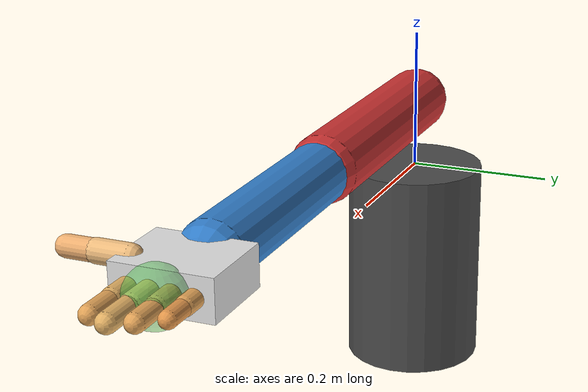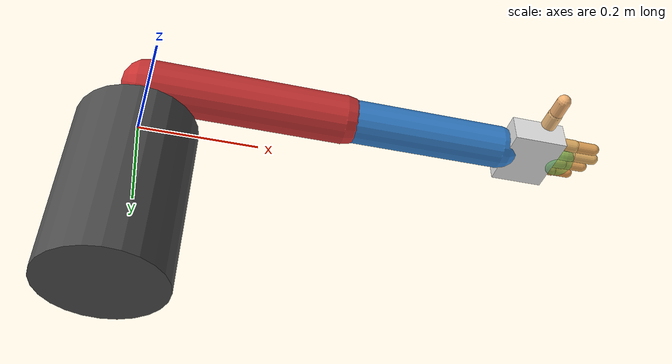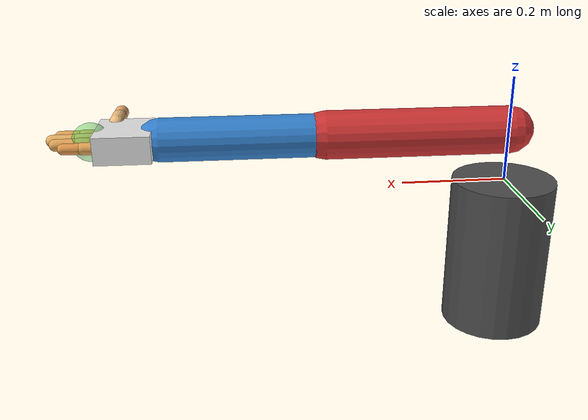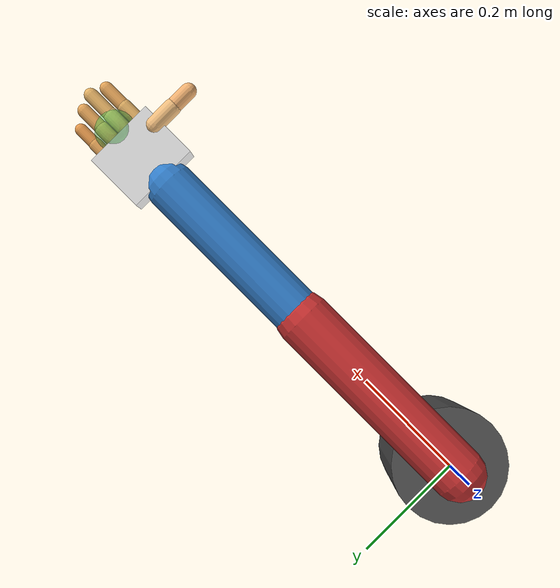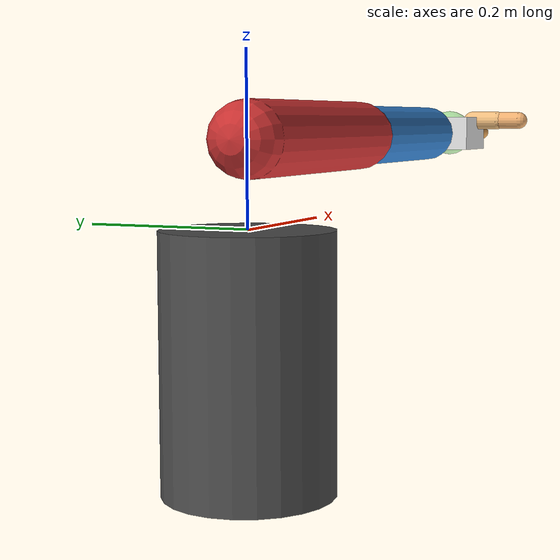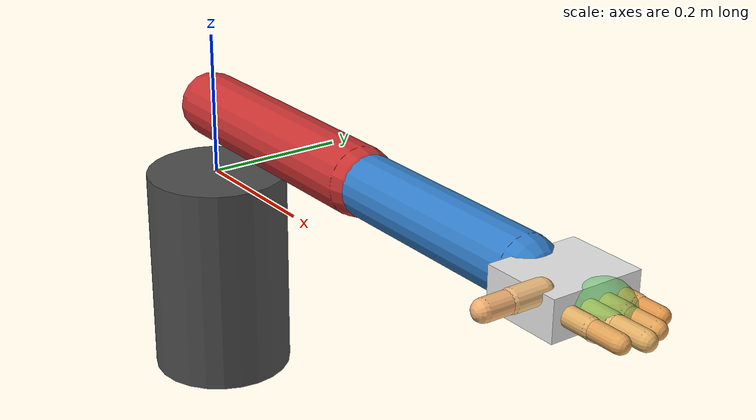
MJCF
<mujoco>
  <!-- 14 自由度灵巧手：肩(1)+肘(1)+腕(2:屈伸/偏摆)+掌，四指各 MCP+PIP 两节可弯，拇指外展+屈曲对捏 -->
  <compiler angle="radian"/>
  <option timestep="0.01" gravity="0 0 0"/>
  <visual>
    <global offwidth="1280" offheight="960"/>
  </visual>

  <default>
    <joint damping="0.5" limited="true"/>
    <geom density="200" contype="1" conaffinity="1"/>
  </default>

  <worldbody>
    <!-- 肩座 -->
    <body name="pedestal" pos="0 0 -0.15">
      <geom type="cylinder" size="0.1 0.15" rgba="0.3 0.3 0.3 1"/>
    </body>

    <!-- 大臂：肩关节绕 z 轴水平摆动 -->
    <body name="upper_arm" pos="0 0 0.1">
      <joint name="shoulder" type="hinge" axis="0 0 1" range="-2.5 2.5"/>
      <geom type="capsule" fromto="0 0 0 0.35 0 0" size="0.045" rgba="0.8 0.2 0.2 1"/>

      <!-- 小臂：肘关节绕 y 轴弯曲 -->
      <body name="forearm" pos="0.35 0 0">
        <joint name="elbow" type="hinge" axis="0 1 0" range="-2.0 1.2"/>
        <geom type="capsule" fromto="0 0 0 0.3 0 0" size="0.04" rgba="0.2 0.5 0.8 1"/>

        <!-- 腕：屈伸(wrist_flex 绕 y) + 偏摆(wrist_dev 绕 z) -->
        <body name="wrist_flex" pos="0.3 0 0">
          <joint name="wrist_flex" type="hinge" axis="0 1 0" range="-1.0 1.0" damping="0.3"/>
          <geom type="sphere" size="0.001" contype="0" conaffinity="0" rgba="0 0 0 0"/>
          <body name="wrist_dev" pos="0 0 0">
            <joint name="wrist_dev" type="hinge" axis="0 0 1" range="-0.6 0.6" damping="0.3"/>
            <geom type="sphere" size="0.001" contype="0" conaffinity="0" rgba="0 0 0 0"/>

            <!-- 手掌 -->
            <body name="palm" pos="0.06 0 0">
              <geom type="box" size="0.05 0.06 0.025" rgba="0.9 0.9 0.9 1"/>

              <!-- 抓取道具：掌中球（不参与碰撞，纯视觉，证明手指能包住它） -->
              <body name="prop_ball" pos="0.06 0 0.0">
                <geom type="sphere" size="0.035" rgba="0.3 0.8 0.3 0.45" contype="0" conaffinity="0"/>
              </body>

              <!-- 食指：MCP + PIP 两节 -->
              <body name="finger_index" pos="0.03 -0.0375 0">
                <joint name="index_mcp" type="hinge" axis="0 1 0" range="-0.3 1.8" damping="0.2"/>
                <geom type="capsule" fromto="0 0 0 0.05 0 0" size="0.012" rgba="0.9 0.7 0.4 1"/>
                <body name="finger_index_mid" pos="0.05 0 0">
                  <joint name="index_pip" type="hinge" axis="0 1 0" range="0 2.2" damping="0.2"/>
                  <geom type="capsule" fromto="0 0 0 0.04 0 0" size="0.011" rgba="0.9 0.65 0.35 1"/>
                </body>
              </body>

              <!-- 中指：略长 -->
              <body name="finger_middle" pos="0.03 -0.0125 0">
                <joint name="middle_mcp" type="hinge" axis="0 1 0" range="-0.3 1.8" damping="0.2"/>
                <geom type="capsule" fromto="0 0 0 0.055 0 0" size="0.0125" rgba="0.9 0.75 0.45 1"/>
                <body name="finger_middle_mid" pos="0.055 0 0">
                  <joint name="middle_pip" type="hinge" axis="0 1 0" range="0 2.2" damping="0.2"/>
                  <geom type="capsule" fromto="0 0 0 0.045 0 0" size="0.0115" rgba="0.9 0.7 0.4 1"/>
                </body>
              </body>

              <!-- 无名指 -->
              <body name="finger_ring" pos="0.03 0.0125 0">
                <joint name="ring_mcp" type="hinge" axis="0 1 0" range="-0.3 1.8" damping="0.2"/>
                <geom type="capsule" fromto="0 0 0 0.05 0 0" size="0.012" rgba="0.9 0.7 0.4 1"/>
                <body name="finger_ring_mid" pos="0.05 0 0">
                  <joint name="ring_pip" type="hinge" axis="0 1 0" range="0 2.2" damping="0.2"/>
                  <geom type="capsule" fromto="0 0 0 0.04 0 0" size="0.011" rgba="0.9 0.65 0.35 1"/>
                </body>
              </body>

              <!-- 小指：最短 -->
              <body name="finger_pinky" pos="0.03 0.0375 0">
                <joint name="pinky_mcp" type="hinge" axis="0 1 0" range="-0.3 1.8" damping="0.2"/>
                <geom type="capsule" fromto="0 0 0 0.04 0 0" size="0.011" rgba="0.9 0.65 0.35 1"/>
                <body name="finger_pinky_mid" pos="0.04 0 0">
                  <joint name="pinky_pip" type="hinge" axis="0 1 0" range="0 2.2" damping="0.2"/>
                  <geom type="capsule" fromto="0 0 0 0.032 0 0" size="0.01" rgba="0.9 0.6 0.3 1"/>
                </body>
              </body>

              <!-- 拇指：外展(绕 z) + 屈曲(绕 y)，可对捏四指 -->
              <body name="thumb_base" pos="0.02 -0.05 0.02">
                <joint name="thumb_abd" type="hinge" axis="0 0 1" range="-0.6 1.2" damping="0.2"/>
                <geom type="capsule" fromto="0 0 0 0 -0.04 0" size="0.014" rgba="0.95 0.75 0.5 1"/>
                <body name="thumb_tip" pos="0 -0.04 0">
                  <joint name="thumb_flex" type="hinge" axis="0 1 0" range="-0.3 1.8" damping="0.2"/>
                  <geom type="capsule" fromto="0 0 0 0 -0.035 0" size="0.013" rgba="0.95 0.7 0.45 1"/>
                </body>
              </body>
            </body>
          </body>
        </body>
      </body>
    </body>
  </worldbody>

  <actuator>
    <!-- ctrlrange 统一 [-1,1]，实际力矩 = ctrl * gear -->
    <motor joint="shoulder"   ctrlrange="-1 1" gear="3.0"/>
    <motor joint="elbow"      ctrlrange="-1 1" gear="1.5"/>
    <motor joint="wrist_flex" ctrlrange="-1 1" gear="1.0"/>
    <motor joint="wrist_dev"  ctrlrange="-1 1" gear="1.0"/>
    <motor joint="index_mcp"  ctrlrange="-1 1" gear="0.4"/>
    <motor joint="index_pip"  ctrlrange="-1 1" gear="0.35"/>
    <motor joint="middle_mcp" ctrlrange="-1 1" gear="0.45"/>
    <motor joint="middle_pip" ctrlrange="-1 1" gear="0.4"/>
    <motor joint="ring_mcp"   ctrlrange="-1 1" gear="0.4"/>
    <motor joint="ring_pip"   ctrlrange="-1 1" gear="0.35"/>
    <motor joint="pinky_mcp"  ctrlrange="-1 1" gear="0.35"/>
    <motor joint="pinky_pip"  ctrlrange="-1 1" gear="0.3"/>
    <motor joint="thumb_abd"  ctrlrange="-1 1" gear="0.5"/>
    <motor joint="thumb_flex" ctrlrange="-1 1" gear="0.45"/>
  </actuator>
</mujoco>
